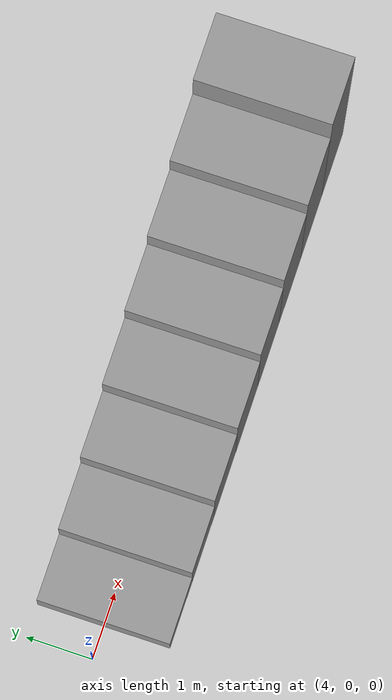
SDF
<sdf version="1.6">
 <world name="default">
  <light name="sun" type="directional">
   <pose>0 0 10 0 -0 0</pose>
   <diffuse>0.8 0.8 0.8 1</diffuse>
   <specular>0.2 0.2 0.2 1</specular>
   <attenuation>
    <range>1000</range>
    <constant>0.9</constant>
    <linear>0.01</linear>
    <quadratic>0.001</quadratic>
   </attenuation>
   <direction>-0.5 0.1 -0.9</direction>
  </light>
  <model name="ground_plane">
   <static>1</static>
   <link name="link">
    <collision name="collision">
     <geometry><plane><normal>0 0 1</normal><size>100 100</size></plane></geometry>
     <surface><friction><ode><mu>100</mu><mu2>50</mu2></ode></friction></surface>
    </collision>
    <visual name="visual">
     <cast_shadows>0</cast_shadows>
     <geometry><plane><normal>0 0 1</normal><size>100 100</size></plane></geometry>
     <material>
      <script><uri>file://media/materials/scripts/gazebo.material</uri><name>Gazebo/Grey</name></script>
     </material>
    </visual>
   </link>
  </model>
  <gravity>0 0 -9.8</gravity>
  <magnetic_field>6e-06 2.3e-05 -4.2e-05</magnetic_field>
  <atmosphere type="adiabatic"/>
  <physics name="default_physics" default="0" type="ode">
   <max_step_size>0.001</max_step_size>
   <real_time_factor>1</real_time_factor>
   <real_time_update_rate>1000</real_time_update_rate>
  </physics>
  <scene><ambient>0.4 0.4 0.4 1</ambient><background>0.7 0.7 0.7 1</background><shadows>1</shadows></scene>
  <spherical_coordinates>
   <surface_model>EARTH_WGS84</surface_model>
   <latitude_deg>0</latitude_deg>
   <longitude_deg>0</longitude_deg>
   <elevation>0</elevation>
   <heading_deg>0</heading_deg>
  </spherical_coordinates>
  <model name="unit_box">
   <pose>5 0 0.25 0 -0 0</pose>
   <link name="link">
    <inertial>
     <mass>1</mass>
     <inertia>
      <ixx>0.166667</ixx>
      <ixy>0</ixy>
      <ixz>0</ixz>
      <iyy>0.166667</iyy>
      <iyz>0</iyz>
      <izz>0.166667</izz>
     </inertia>
    </inertial>
    <collision name="collision"><geometry><box><size>1 2 0.5</size></box></geometry></collision>
    <visual name="visual">
     <geometry><box><size>1 2 0.5</size></box></geometry>
     <material>
      <script><name>Gazebo/Grey</name><uri>file://media/materials/scripts/gazebo.material</uri></script>
     </material>
    </visual>
   </link>
   <static>1</static>
  </model>
  <model name="unit_box1">
   <pose>6 0 0.5 0 -0 0</pose>
   <link name="link">
    <inertial>
     <mass>1</mass>
     <inertia>
      <ixx>0.166667</ixx>
      <ixy>0</ixy>
      <ixz>0</ixz>
      <iyy>0.166667</iyy>
      <iyz>0</iyz>
      <izz>0.166667</izz>
     </inertia>
    </inertial>
    <collision name="collision"><geometry><box><size>1 2 1</size></box></geometry></collision>
    <visual name="visual">
     <geometry><box><size>1 2 1</size></box></geometry>
     <material>
      <script><name>Gazebo/Grey</name><uri>file://media/materials/scripts/gazebo.material</uri></script>
     </material>
    </visual>
   </link>
   <static>1</static>
  </model>
  <model name="unit_box2">
   <pose>7 0 0.75 0 -0 0</pose>
   <link name="link">
    <inertial>
     <mass>1</mass>
     <inertia>
      <ixx>0.166667</ixx>
      <ixy>0</ixy>
      <ixz>0</ixz>
      <iyy>0.166667</iyy>
      <iyz>0</iyz>
      <izz>0.166667</izz>
     </inertia>
    </inertial>
    <collision name="collision"><geometry><box><size>1 2 1.5</size></box></geometry></collision>
    <visual name="visual">
     <geometry><box><size>1 2 1.5</size></box></geometry>
     <material>
      <script><name>Gazebo/Grey</name><uri>file://media/materials/scripts/gazebo.material</uri></script>
     </material>
    </visual>
   </link>
   <static>1</static>
  </model>
  <model name="unit_box3">
   <pose>8 0 1 0 -0 0</pose>
   <link name="link">
    <inertial>
     <mass>1</mass>
     <inertia>
      <ixx>0.166667</ixx>
      <ixy>0</ixy>
      <ixz>0</ixz>
      <iyy>0.166667</iyy>
      <iyz>0</iyz>
      <izz>0.166667</izz>
     </inertia>
    </inertial>
    <collision name="collision"><geometry><box><size>1 2 2</size></box></geometry></collision>
    <visual name="visual">
     <geometry><box><size>1 2 2</size></box></geometry>
     <material>
      <script><name>Gazebo/Grey</name><uri>file://media/materials/scripts/gazebo.material</uri></script>
     </material>
    </visual>
   </link>
   <static>1</static>
  </model>
  <model name="unit_box4">
   <pose>9 0 1.25 0 -0 0</pose>
   <link name="link">
    <inertial>
     <mass>1</mass>
     <inertia>
      <ixx>0.166667</ixx>
      <ixy>0</ixy>
      <ixz>0</ixz>
      <iyy>0.166667</iyy>
      <iyz>0</iyz>
      <izz>0.166667</izz>
     </inertia>
    </inertial>
    <collision name="collision"><geometry><box><size>1 2 2.5</size></box></geometry></collision>
    <visual name="visual">
     <geometry><box><size>1 2 2.5</size></box></geometry>
     <material>
      <script><name>Gazebo/Grey</name><uri>file://media/materials/scripts/gazebo.material</uri></script>
     </material>
    </visual>
   </link>
   <static>1</static>
  </model>
  <model name="unit_box5">
   <pose>10 0 1.5 0 -0 0</pose>
   <link name="link">
    <inertial>
     <mass>1</mass>
     <inertia>
      <ixx>0.166667</ixx>
      <ixy>0</ixy>
      <ixz>0</ixz>
      <iyy>0.166667</iyy>
      <iyz>0</iyz>
      <izz>0.166667</izz>
     </inertia>
    </inertial>
    <collision name="collision"><geometry><box><size>1 2 3</size></box></geometry></collision>
    <visual name="visual">
     <geometry><box><size>1 2 3</size></box></geometry>
     <material>
      <script><name>Gazebo/Grey</name><uri>file://media/materials/scripts/gazebo.material</uri></script>
     </material>
    </visual>
   </link>
   <static>1</static>
  </model>
  <model name="unit_box6">
   <pose>11 0 1.75 0 -0 0</pose>
   <link name="link">
    <inertial>
     <mass>1</mass>
     <inertia>
      <ixx>0.166667</ixx>
      <ixy>0</ixy>
      <ixz>0</ixz>
      <iyy>0.166667</iyy>
      <iyz>0</iyz>
      <izz>0.166667</izz>
     </inertia>
    </inertial>
    <collision name="collision"><geometry><box><size>1 2 3.5</size></box></geometry></collision>
    <visual name="visual">
     <geometry><box><size>1 2 3.5</size></box></geometry>
     <material>
      <script><name>Gazebo/Grey</name><uri>file://media/materials/scripts/gazebo.material</uri></script>
     </material>
    </visual>
   </link>
   <static>1</static>
  </model>
  <model name="unit_box7">
   <pose>12 0 2 0 -0 0</pose>
   <link name="link">
    <inertial>
     <mass>1</mass>
     <inertia>
      <ixx>0.166667</ixx>
      <ixy>0</ixy>
      <ixz>0</ixz>
      <iyy>0.166667</iyy>
      <iyz>0</iyz>
      <izz>0.166667</izz>
     </inertia>
    </inertial>
    <collision name="collision"><geometry><box><size>1 2 4.5</size></box></geometry></collision>
    <visual name="visual">
     <geometry><box><size>1 2 4.5</size></box></geometry>
     <material>
      <script><name>Gazebo/Grey</name><uri>file://media/materials/scripts/gazebo.material</uri></script>
     </material>
    </visual>
   </link>
   <static>1</static>
  </model>
 </world>
</sdf>
